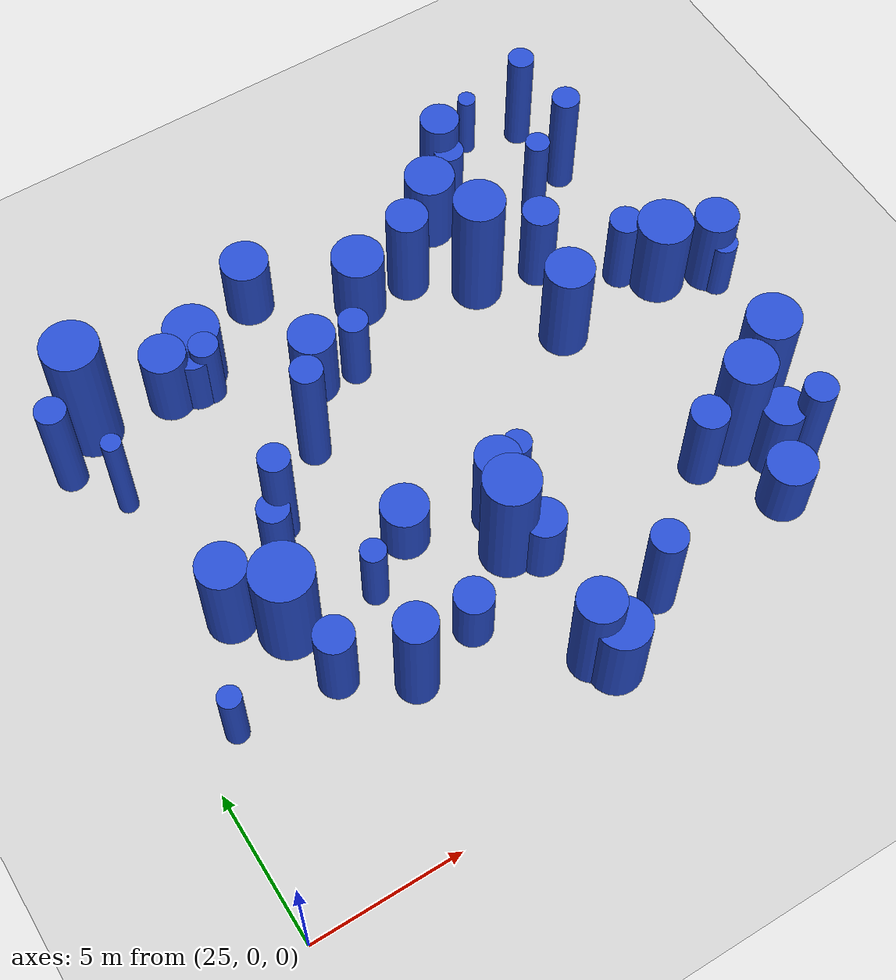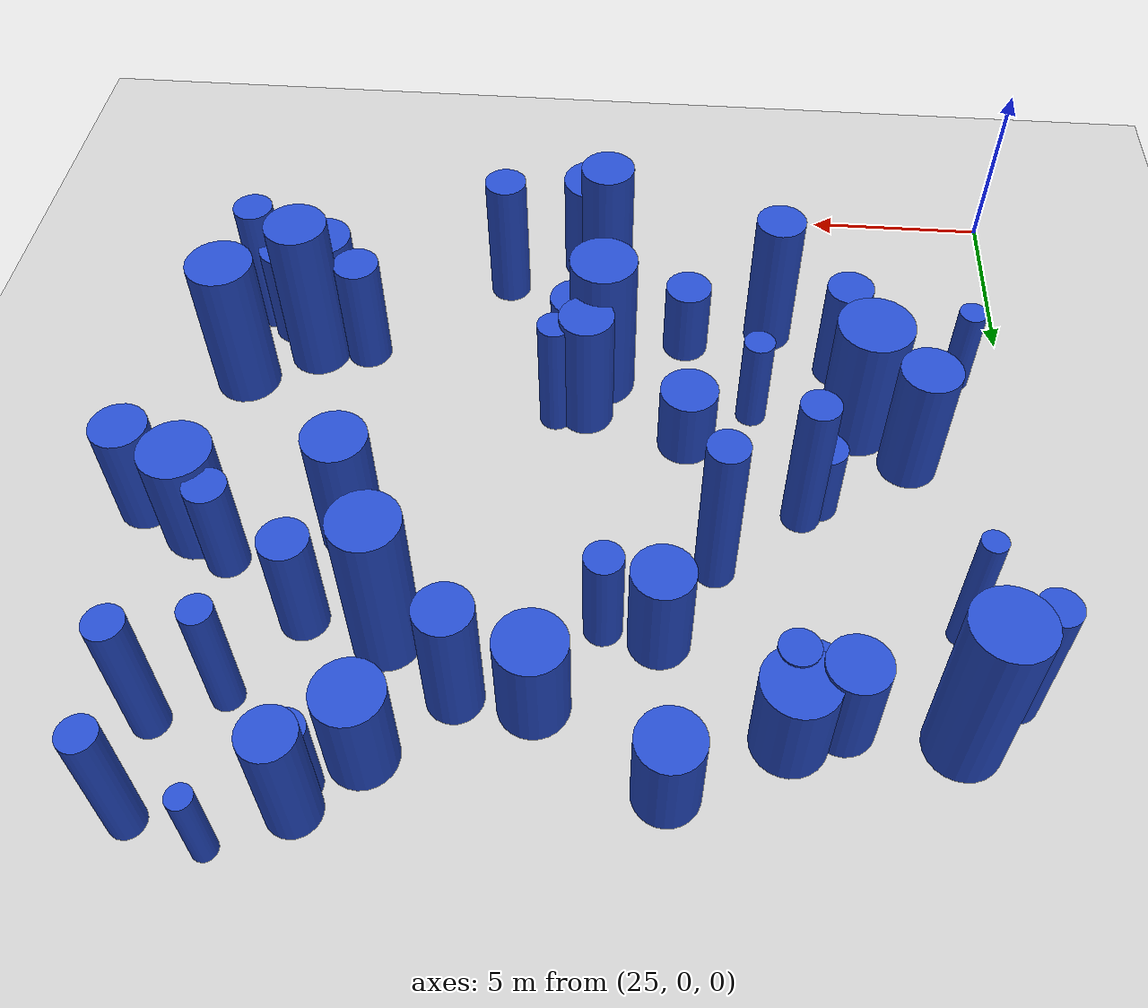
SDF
<sdf version="1.6">
 <world name="default">
  <model name="ground_plane">
   <static>1</static>
   <link name="link">
    <collision name="collision">
     <geometry><plane><normal>0 0 1</normal><size>100 100</size></plane></geometry>
     <surface><friction><ode><mu>100</mu><mu2>50</mu2></ode></friction></surface>
    </collision>
    <visual name="visual">
     <cast_shadows>0</cast_shadows>
     <geometry><plane><normal>0 0 1</normal><size>100 100</size></plane></geometry>
     <material>
      <script><uri>file://media/materials/scripts/gazebo.material</uri><name>Gazebo/Grey</name></script>
     </material>
    </visual>
   </link>
  </model>
  <model name="9">
   <static>0</static>
   <link name="link">
    <inertial>
     <mass>2</mass>
     <inertia><ixx>1.24437</ixx><ixy>0</ixy><ixz>0</ixz><iyy>1.24437</iyy><iyz>0</iyz><izz>0.137792</izz></inertia>
    </inertial>
    <collision name="collision">
     <geometry><cylinder><length>2.65572</length><radius>0.371203</radius></cylinder></geometry>
     <surface><contact><collide_without_contact>1</collide_without_contact></contact></surface>
    </collision>
    <visual name="visual">
     <geometry><cylinder><length>2.65572</length><radius>0.371203</radius></cylinder></geometry>
     <material>
      <script><uri>file://media/materials/scripts/gazebo.material</uri><name>Gazebo/Blue</name></script>
     </material>
    </visual>
    <gravity>0</gravity>
   </link>
   <pose>26.3091 6.47508 1.32786 0 -0 0</pose>
  </model>
  <model name="11">
   <static>0</static>
   <link name="link">
    <inertial>
     <mass>2</mass>
     <inertia><ixx>2.14367</ixx><ixy>0</ixy><ixz>0</ixz><iyy>2.14367</iyy><iyz>0</iyz><izz>0.840416</izz></inertia>
    </inertial>
    <collision name="collision">
     <geometry><cylinder><length>3.2157</length><radius>0.916742</radius></cylinder></geometry>
     <surface><contact><collide_without_contact>1</collide_without_contact></contact></surface>
    </collision>
    <visual name="visual">
     <geometry><cylinder><length>3.2157</length><radius>0.916742</radius></cylinder></geometry>
     <material>
      <script><uri>file://media/materials/scripts/gazebo.material</uri><name>Gazebo/Blue</name></script>
     </material>
    </visual>
    <gravity>0</gravity>
   </link>
   <pose>45.9924 13.2995 1.60785 0 -0 0</pose>
  </model>
  <model name="18">
   <static>0</static>
   <link name="link">
    <inertial>
     <mass>2</mass>
     <inertia><ixx>1.59009</ixx><ixy>0</ixy><ixz>0</ixz><iyy>1.59009</iyy><iyz>0</iyz><izz>0.231054</izz></inertia>
    </inertial>
    <collision name="collision">
     <geometry><cylinder><length>2.97446</length><radius>0.48068</radius></cylinder></geometry>
     <surface><contact><collide_without_contact>1</collide_without_contact></contact></surface>
    </collision>
    <visual name="visual">
     <geometry><cylinder><length>2.97446</length><radius>0.48068</radius></cylinder></geometry>
     <material>
      <script><uri>file://media/materials/scripts/gazebo.material</uri><name>Gazebo/Blue</name></script>
     </material>
    </visual>
    <gravity>0</gravity>
   </link>
   <pose>35.5825 15.4394 1.48723 0 -0 0</pose>
  </model>
  <model name="30">
   <static>0</static>
   <link name="link">
    <inertial>
     <mass>2</mass>
     <inertia><ixx>3.98428</ixx><ixy>0</ixy><ixz>0</ixz><iyy>3.98428</iyy><iyz>0</iyz><izz>0.265355</izz></inertia>
    </inertial>
    <collision name="collision">
     <geometry><cylinder><length>4.80724</length><radius>0.515126</radius></cylinder></geometry>
     <surface><contact><collide_without_contact>1</collide_without_contact></contact></surface>
    </collision>
    <visual name="visual">
     <geometry><cylinder><length>4.80724</length><radius>0.515126</radius></cylinder></geometry>
     <material>
      <script><uri>file://media/materials/scripts/gazebo.material</uri><name>Gazebo/Blue</name></script>
     </material>
    </visual>
    <gravity>0</gravity>
   </link>
   <pose>32.9406 13.5218 2.40362 0 -0 0</pose>
  </model>
  <model name="32">
   <static>0</static>
   <link name="link">
    <inertial>
     <mass>2</mass>
     <inertia><ixx>2.61108</ixx><ixy>0</ixy><ixz>0</ixz><iyy>2.61108</iyy><iyz>0</iyz><izz>0.521676</izz></inertia>
    </inertial>
    <collision name="collision">
     <geometry><cylinder><length>3.75519</length><radius>0.722271</radius></cylinder></geometry>
     <surface><contact><collide_without_contact>1</collide_without_contact></contact></surface>
    </collision>
    <visual name="visual">
     <geometry><cylinder><length>3.75519</length><radius>0.722271</radius></cylinder></geometry>
     <material>
      <script><uri>file://media/materials/scripts/gazebo.material</uri><name>Gazebo/Blue</name></script>
     </material>
    </visual>
    <gravity>0</gravity>
   </link>
   <pose>36.5241 8.5571 1.87759 0 -0 0</pose>
  </model>
  <model name="33">
   <static>0</static>
   <link name="link">
    <inertial>
     <mass>2</mass>
     <inertia><ixx>2.72224</ixx><ixy>0</ixy><ixz>0</ixz><iyy>2.72224</iyy><iyz>0</iyz><izz>0.654472</izz></inertia>
    </inertial>
    <collision name="collision">
     <geometry><cylinder><length>3.79078</length><radius>0.808995</radius></cylinder></geometry>
     <surface><contact><collide_without_contact>1</collide_without_contact></contact></surface>
    </collision>
    <visual name="visual">
     <geometry><cylinder><length>3.79078</length><radius>0.808995</radius></cylinder></geometry>
     <material>
      <script><uri>file://media/materials/scripts/gazebo.material</uri><name>Gazebo/Blue</name></script>
     </material>
    </visual>
    <gravity>0</gravity>
   </link>
   <pose>42.0996 13.0769 1.89539 0 -0 0</pose>
  </model>
  <model name="37">
   <static>0</static>
   <link name="link">
    <inertial>
     <mass>2</mass>
     <inertia><ixx>3.11102</ixx><ixy>0</ixy><ixz>0</ixz><iyy>3.11102</iyy><iyz>0</iyz><izz>0.974531</izz></inertia>
    </inertial>
    <collision name="collision">
     <geometry><cylinder><length>3.96769</length><radius>0.987183</radius></cylinder></geometry>
     <surface><contact><collide_without_contact>1</collide_without_contact></contact></surface>
    </collision>
    <visual name="visual">
     <geometry><cylinder><length>3.96769</length><radius>0.987183</radius></cylinder></geometry>
     <material>
      <script><uri>file://media/materials/scripts/gazebo.material</uri><name>Gazebo/Blue</name></script>
     </material>
    </visual>
    <gravity>0</gravity>
   </link>
   <pose>29.2156 8.50585 1.98384 0 -0 0</pose>
  </model>
  <model name="38">
   <static>0</static>
   <link name="link">
    <inertial>
     <mass>2</mass>
     <inertia><ixx>1.65718</ixx><ixy>0</ixy><ixz>0</ixz><iyy>1.65718</iyy><iyz>0</iyz><izz>0.295859</izz></inertia>
    </inertial>
    <collision name="collision">
     <geometry><cylinder><length>3.00924</length><radius>0.543929</radius></cylinder></geometry>
     <surface><contact><collide_without_contact>1</collide_without_contact></contact></surface>
    </collision>
    <visual name="visual">
     <geometry><cylinder><length>3.00924</length><radius>0.543929</radius></cylinder></geometry>
     <material>
      <script><uri>file://media/materials/scripts/gazebo.material</uri><name>Gazebo/Blue</name></script>
     </material>
    </visual>
    <gravity>0</gravity>
   </link>
   <pose>45.0656 14.1562 1.50462 0 -0 0</pose>
  </model>
  <model name="42">
   <static>0</static>
   <link name="link">
    <inertial>
     <mass>2</mass>
     <inertia><ixx>2.29017</ixx><ixy>0</ixy><ixz>0</ixz><iyy>2.29017</iyy><iyz>0</iyz><izz>0.162084</izz></inertia>
    </inertial>
    <collision name="collision">
     <geometry><cylinder><length>3.64071</length><radius>0.402597</radius></cylinder></geometry>
     <surface><contact><collide_without_contact>1</collide_without_contact></contact></surface>
    </collision>
    <visual name="visual">
     <geometry><cylinder><length>3.64071</length><radius>0.402597</radius></cylinder></geometry>
     <material>
      <script><uri>file://media/materials/scripts/gazebo.material</uri><name>Gazebo/Blue</name></script>
     </material>
    </visual>
    <gravity>0</gravity>
   </link>
   <pose>44.08 17.9301 1.82036 0 -0 0</pose>
  </model>
  <model name="44">
   <static>0</static>
   <link name="link">
    <inertial>
     <mass>2</mass>
     <inertia><ixx>1.0311</ixx><ixy>0</ixy><ixz>0</ixz><iyy>1.0311</iyy><iyz>0</iyz><izz>0.585255</izz></inertia>
    </inertial>
    <collision name="collision">
     <geometry><cylinder><length>2.10495</length><radius>0.765019</radius></cylinder></geometry>
     <surface><contact><collide_without_contact>1</collide_without_contact></contact></surface>
    </collision>
    <visual name="visual">
     <geometry><cylinder><length>2.10495</length><radius>0.765019</radius></cylinder></geometry>
     <material>
      <script><uri>file://media/materials/scripts/gazebo.material</uri><name>Gazebo/Blue</name></script>
     </material>
    </visual>
    <gravity>0</gravity>
   </link>
   <pose>33.7804 9.37787 1.05247 0 -0 0</pose>
  </model>
  <model name="47">
   <static>0</static>
   <link name="link">
    <inertial>
     <mass>2</mass>
     <inertia><ixx>1.72032</ixx><ixy>0</ixy><ixz>0</ixz><iyy>1.72032</iyy><iyz>0</iyz><izz>0.58604</izz></inertia>
    </inertial>
    <collision name="collision">
     <geometry><cylinder><length>2.92639</length><radius>0.765532</radius></cylinder></geometry>
     <surface><contact><collide_without_contact>1</collide_without_contact></contact></surface>
    </collision>
    <visual name="visual">
     <geometry><cylinder><length>2.92639</length><radius>0.765532</radius></cylinder></geometry>
     <material>
      <script><uri>file://media/materials/scripts/gazebo.material</uri><name>Gazebo/Blue</name></script>
     </material>
    </visual>
    <gravity>0</gravity>
   </link>
   <pose>34.2231 15.6872 1.4632 0 -0 0</pose>
  </model>
  <model name="54">
   <static>0</static>
   <link name="link">
    <inertial>
     <mass>2</mass>
     <inertia><ixx>2.6423</ixx><ixy>0</ixy><ixz>0</ixz><iyy>2.6423</iyy><iyz>0</iyz><izz>0.192654</izz></inertia>
    </inertial>
    <collision name="collision">
     <geometry><cylinder><length>3.90843</length><radius>0.438924</radius></cylinder></geometry>
     <surface><contact><collide_without_contact>1</collide_without_contact></contact></surface>
    </collision>
    <visual name="visual">
     <geometry><cylinder><length>3.90843</length><radius>0.438924</radius></cylinder></geometry>
     <material>
      <script><uri>file://media/materials/scripts/gazebo.material</uri><name>Gazebo/Blue</name></script>
     </material>
    </visual>
    <gravity>0</gravity>
   </link>
   <pose>45.4673 21.0827 1.95421 0 -0 0</pose>
  </model>
  <model name="77">
   <static>0</static>
   <link name="link">
    <inertial>
     <mass>2</mass>
     <inertia><ixx>4.20593</ixx><ixy>0</ixy><ixz>0</ixz><iyy>4.20593</iyy><iyz>0</iyz><izz>0.68476</izz></inertia>
    </inertial>
    <collision name="collision">
     <geometry><cylinder><length>4.81469</length><radius>0.827502</radius></cylinder></geometry>
     <surface><contact><collide_without_contact>1</collide_without_contact></contact></surface>
    </collision>
    <visual name="visual">
     <geometry><cylinder><length>4.81469</length><radius>0.827502</radius></cylinder></geometry>
     <material>
      <script><uri>file://media/materials/scripts/gazebo.material</uri><name>Gazebo/Blue</name></script>
     </material>
    </visual>
    <gravity>0</gravity>
   </link>
   <pose>44.2937 6.83643 2.40735 0 -0 0</pose>
  </model>
  <model name="80">
   <static>0</static>
   <link name="link">
    <inertial>
     <mass>2</mass>
     <inertia><ixx>2.22187</ixx><ixy>0</ixy><ixz>0</ixz><iyy>2.22187</iyy><iyz>0</iyz><izz>0.198127</izz></inertia>
    </inertial>
    <collision name="collision">
     <geometry><cylinder><length>3.56887</length><radius>0.445114</radius></cylinder></geometry>
     <surface><contact><collide_without_contact>1</collide_without_contact></contact></surface>
    </collision>
    <visual name="visual">
     <geometry><cylinder><length>3.56887</length><radius>0.445114</radius></cylinder></geometry>
     <material>
      <script><uri>file://media/materials/scripts/gazebo.material</uri><name>Gazebo/Blue</name></script>
     </material>
    </visual>
    <gravity>0</gravity>
   </link>
   <pose>37.3422 8.74565 1.78444 0 -0 0</pose>
  </model>
  <model name="87">
   <static>0</static>
   <link name="link">
    <inertial>
     <mass>2</mass>
     <inertia><ixx>1.36787</ixx><ixy>0</ixy><ixz>0</ixz><iyy>1.36787</iyy><iyz>0</iyz><izz>0.633021</izz></inertia>
    </inertial>
    <collision name="collision">
     <geometry><cylinder><length>2.51161</length><radius>0.795626</radius></cylinder></geometry>
     <surface><contact><collide_without_contact>1</collide_without_contact></contact></surface>
    </collision>
    <visual name="visual">
     <geometry><cylinder><length>2.51161</length><radius>0.795626</radius></cylinder></geometry>
     <material>
      <script><uri>file://media/materials/scripts/gazebo.material</uri><name>Gazebo/Blue</name></script>
     </material>
    </visual>
    <gravity>0</gravity>
   </link>
   <pose>33.9007 19.5526 1.2558 0 -0 0</pose>
  </model>
  <model name="91">
   <static>0</static>
   <link name="link">
    <inertial>
     <mass>2</mass>
     <inertia><ixx>2.57035</ixx><ixy>0</ixy><ixz>0</ixz><iyy>2.57035</iyy><iyz>0</iyz><izz>0.611671</izz></inertia>
    </inertial>
    <collision name="collision">
     <geometry><cylinder><length>3.68607</length><radius>0.782094</radius></cylinder></geometry>
     <surface><contact><collide_without_contact>1</collide_without_contact></contact></surface>
    </collision>
    <visual name="visual">
     <geometry><cylinder><length>3.68607</length><radius>0.782094</radius></cylinder></geometry>
     <material>
      <script><uri>file://media/materials/scripts/gazebo.material</uri><name>Gazebo/Blue</name></script>
     </material>
    </visual>
    <gravity>0</gravity>
   </link>
   <pose>27.8914 9.70745 1.84303 0 -0 0</pose>
  </model>
  <model name="94">
   <static>0</static>
   <link name="link">
    <inertial>
     <mass>2</mass>
     <inertia><ixx>3.56019</ixx><ixy>0</ixy><ixz>0</ixz><iyy>3.56019</iyy><iyz>0</iyz><izz>0.770451</izz></inertia>
    </inertial>
    <collision name="collision">
     <geometry><cylinder><length>4.36461</length><radius>0.877753</radius></cylinder></geometry>
     <surface><contact><collide_without_contact>1</collide_without_contact></contact></surface>
    </collision>
    <visual name="visual">
     <geometry><cylinder><length>4.36461</length><radius>0.877753</radius></cylinder></geometry>
     <material>
      <script><uri>file://media/materials/scripts/gazebo.material</uri><name>Gazebo/Blue</name></script>
     </material>
    </visual>
    <gravity>0</gravity>
   </link>
   <pose>46.1019 7.98525 2.1823 0 -0 0</pose>
  </model>
  <model name="98">
   <static>0</static>
   <link name="link">
    <inertial>
     <mass>2</mass>
     <inertia><ixx>1.69174</ixx><ixy>0</ixy><ixz>0</ixz><iyy>1.69174</iyy><iyz>0</iyz><izz>0.702063</izz></inertia>
    </inertial>
    <collision name="collision">
     <geometry><cylinder><length>2.83624</length><radius>0.837892</radius></cylinder></geometry>
     <surface><contact><collide_without_contact>1</collide_without_contact></contact></surface>
    </collision>
    <visual name="visual">
     <geometry><cylinder><length>2.83624</length><radius>0.837892</radius></cylinder></geometry>
     <material>
      <script><uri>file://media/materials/scripts/gazebo.material</uri><name>Gazebo/Blue</name></script>
     </material>
    </visual>
    <gravity>0</gravity>
   </link>
   <pose>40.6755 19.1682 1.41812 0 -0 0</pose>
  </model>
  <model name="99">
   <static>0</static>
   <link name="link">
    <inertial>
     <mass>2</mass>
     <inertia><ixx>2.23323</ixx><ixy>0</ixy><ixz>0</ixz><iyy>2.23323</iyy><iyz>0</iyz><izz>0.429787</izz></inertia>
    </inertial>
    <collision name="collision">
     <geometry><cylinder><length>3.47994</length><radius>0.655581</radius></cylinder></geometry>
     <surface><contact><collide_without_contact>1</collide_without_contact></contact></surface>
    </collision>
    <visual name="visual">
     <geometry><cylinder><length>3.47994</length><radius>0.655581</radius></cylinder></geometry>
     <material>
      <script><uri>file://media/materials/scripts/gazebo.material</uri><name>Gazebo/Blue</name></script>
     </material>
    </visual>
    <gravity>0</gravity>
   </link>
   <pose>41.9296 20.5668 1.73997 0 -0 0</pose>
  </model>
  <model name="103">
   <static>0</static>
   <link name="link">
    <inertial>
     <mass>2</mass>
     <inertia><ixx>3.11126</ixx><ixy>0</ixy><ixz>0</ixz><iyy>3.11126</iyy><iyz>0</iyz><izz>0.560773</izz></inertia>
    </inertial>
    <collision name="collision">
     <geometry><cylinder><length>4.12131</length><radius>0.748848</radius></cylinder></geometry>
     <surface><contact><collide_without_contact>1</collide_without_contact></contact></surface>
    </collision>
    <visual name="visual">
     <geometry><cylinder><length>4.12131</length><radius>0.748848</radius></cylinder></geometry>
     <material>
      <script><uri>file://media/materials/scripts/gazebo.material</uri><name>Gazebo/Blue</name></script>
     </material>
    </visual>
    <gravity>0</gravity>
   </link>
   <pose>36.3629 2.95543 2.06066 0 -0 0</pose>
  </model>
  <model name="107">
   <static>0</static>
   <link name="link">
    <inertial>
     <mass>2</mass>
     <inertia><ixx>1.20918</ixx><ixy>0</ixy><ixz>0</ixz><iyy>1.20918</iyy><iyz>0</iyz><izz>0.251671</izz></inertia>
    </inertial>
    <collision name="collision">
     <geometry><cylinder><length>2.54953</length><radius>0.501669</radius></cylinder></geometry>
     <surface><contact><collide_without_contact>1</collide_without_contact></contact></surface>
    </collision>
    <visual name="visual">
     <geometry><cylinder><length>2.54953</length><radius>0.501669</radius></cylinder></geometry>
     <material>
      <script><uri>file://media/materials/scripts/gazebo.material</uri><name>Gazebo/Blue</name></script>
     </material>
    </visual>
    <gravity>0</gravity>
   </link>
   <pose>41.91 19.9583 1.27476 0 -0 0</pose>
  </model>
  <model name="115">
   <static>0</static>
   <link name="link">
    <inertial>
     <mass>2</mass>
     <inertia><ixx>2.94351</ixx><ixy>0</ixy><ixz>0</ixz><iyy>2.94351</iyy><iyz>0</iyz><izz>0.215912</izz></inertia>
    </inertial>
    <collision name="collision">
     <geometry><cylinder><length>4.12472</length><radius>0.464664</radius></cylinder></geometry>
     <surface><contact><collide_without_contact>1</collide_without_contact></contact></surface>
    </collision>
    <visual name="visual">
     <geometry><cylinder><length>4.12472</length><radius>0.464664</radius></cylinder></geometry>
     <material>
      <script><uri>file://media/materials/scripts/gazebo.material</uri><name>Gazebo/Blue</name></script>
     </material>
    </visual>
    <gravity>0</gravity>
   </link>
   <pose>45.6699 18.6938 2.06236 0 -0 0</pose>
  </model>
  <model name="125">
   <static>0</static>
   <link name="link">
    <inertial>
     <mass>2</mass>
     <inertia><ixx>1.96404</ixx><ixy>0</ixy><ixz>0</ixz><iyy>1.96404</iyy><iyz>0</iyz><izz>0.521993</izz></inertia>
    </inertial>
    <collision name="collision">
     <geometry><cylinder><length>3.1966</length><radius>0.72249</radius></cylinder></geometry>
     <surface><contact><collide_without_contact>1</collide_without_contact></contact></surface>
    </collision>
    <visual name="visual">
     <geometry><cylinder><length>3.1966</length><radius>0.72249</radius></cylinder></geometry>
     <material>
      <script><uri>file://media/materials/scripts/gazebo.material</uri><name>Gazebo/Blue</name></script>
     </material>
    </visual>
    <gravity>0</gravity>
   </link>
   <pose>47.569 12.6602 1.5983 0 -0 0</pose>
  </model>
  <model name="127">
   <static>0</static>
   <link name="link">
    <inertial>
     <mass>2</mass>
     <inertia><ixx>1.55117</ixx><ixy>0</ixy><ixz>0</ixz><iyy>1.55117</iyy><iyz>0</iyz><izz>0.567486</izz></inertia>
    </inertial>
    <collision name="collision">
     <geometry><cylinder><length>2.75763</length><radius>0.753316</radius></cylinder></geometry>
     <surface><contact><collide_without_contact>1</collide_without_contact></contact></surface>
    </collision>
    <visual name="visual">
     <geometry><cylinder><length>2.75763</length><radius>0.753316</radius></cylinder></geometry>
     <material>
      <script><uri>file://media/materials/scripts/gazebo.material</uri><name>Gazebo/Blue</name></script>
     </material>
    </visual>
    <gravity>0</gravity>
   </link>
   <pose>29.9704 17.6052 1.37882 0 -0 0</pose>
  </model>
  <model name="128">
   <static>0</static>
   <link name="link">
    <inertial>
     <mass>2</mass>
     <inertia><ixx>4.1382</ixx><ixy>0</ixy><ixz>0</ixz><iyy>4.1382</iyy><iyz>0</iyz><izz>0.713657</izz></inertia>
    </inertial>
    <collision name="collision">
     <geometry><cylinder><length>4.76322</length><radius>0.844782</radius></cylinder></geometry>
     <surface><contact><collide_without_contact>1</collide_without_contact></contact></surface>
    </collision>
    <visual name="visual">
     <geometry><cylinder><length>4.76322</length><radius>0.844782</radius></cylinder></geometry>
     <material>
      <script><uri>file://media/materials/scripts/gazebo.material</uri><name>Gazebo/Blue</name></script>
     </material>
    </visual>
    <gravity>0</gravity>
   </link>
   <pose>40.6759 16.1664 2.38161 0 -0 0</pose>
  </model>
  <model name="129">
   <static>0</static>
   <link name="link">
    <inertial>
     <mass>2</mass>
     <inertia><ixx>2.89468</ixx><ixy>0</ixy><ixz>0</ixz><iyy>2.89468</iyy><iyz>0</iyz><izz>0.2873</izz></inertia>
    </inertial>
    <collision name="collision">
     <geometry><cylinder><length>4.06278</length><radius>0.536004</radius></cylinder></geometry>
     <surface><contact><collide_without_contact>1</collide_without_contact></contact></surface>
    </collision>
    <visual name="visual">
     <geometry><cylinder><length>4.06278</length><radius>0.536004</radius></cylinder></geometry>
     <material>
      <script><uri>file://media/materials/scripts/gazebo.material</uri><name>Gazebo/Blue</name></script>
     </material>
    </visual>
    <gravity>0</gravity>
   </link>
   <pose>45.922 5.34029 2.03139 0 -0 0</pose>
  </model>
  <model name="132">
   <static>0</static>
   <link name="link">
    <inertial>
     <mass>2</mass>
     <inertia><ixx>1.3418</ixx><ixy>0</ixy><ixz>0</ixz><iyy>1.3418</iyy><iyz>0</iyz><izz>0.237308</izz></inertia>
    </inertial>
    <collision name="collision">
     <geometry><cylinder><length>2.70904</length><radius>0.487143</radius></cylinder></geometry>
     <surface><contact><collide_without_contact>1</collide_without_contact></contact></surface>
    </collision>
    <visual name="visual">
     <geometry><cylinder><length>2.70904</length><radius>0.487143</radius></cylinder></geometry>
     <material>
      <script><uri>file://media/materials/scripts/gazebo.material</uri><name>Gazebo/Blue</name></script>
     </material>
    </visual>
    <gravity>0</gravity>
   </link>
   <pose>31.2198 17.2572 1.35452 0 -0 0</pose>
  </model>
  <model name="138">
   <static>0</static>
   <link name="link">
    <inertial>
     <mass>2</mass>
     <inertia><ixx>3.24388</ixx><ixy>0</ixy><ixz>0</ixz><iyy>3.24388</iyy><iyz>0</iyz><izz>0.443117</izz></inertia>
    </inertial>
    <collision name="collision">
     <geometry><cylinder><length>4.2584</length><radius>0.66567</radius></cylinder></geometry>
     <surface><contact><collide_without_contact>1</collide_without_contact></contact></surface>
    </collision>
    <visual name="visual">
     <geometry><cylinder><length>4.2584</length><radius>0.66567</radius></cylinder></geometry>
     <material>
      <script><uri>file://media/materials/scripts/gazebo.material</uri><name>Gazebo/Blue</name></script>
     </material>
    </visual>
    <gravity>0</gravity>
   </link>
   <pose>31.5591 5.0381 2.1292 0 -0 0</pose>
  </model>
  <model name="140">
   <static>0</static>
   <link name="link">
    <inertial>
     <mass>2</mass>
     <inertia><ixx>2.45127</ixx><ixy>0</ixy><ixz>0</ixz><iyy>2.45127</iyy><iyz>0</iyz><izz>0.102698</izz></inertia>
    </inertial>
    <collision name="collision">
     <geometry><cylinder><length>3.79467</length><radius>0.320465</radius></cylinder></geometry>
     <surface><contact><collide_without_contact>1</collide_without_contact></contact></surface>
    </collision>
    <visual name="visual">
     <geometry><cylinder><length>3.79467</length><radius>0.320465</radius></cylinder></geometry>
     <material>
      <script><uri>file://media/materials/scripts/gazebo.material</uri><name>Gazebo/Blue</name></script>
     </material>
    </visual>
    <gravity>0</gravity>
   </link>
   <pose>27.0424 14.9216 1.89733 0 -0 0</pose>
  </model>
  <model name="147">
   <static>0</static>
   <link name="link">
    <inertial>
     <mass>2</mass>
     <inertia><ixx>1.06845</ixx><ixy>0</ixy><ixz>0</ixz><iyy>1.06845</iyy><iyz>0</iyz><izz>0.394035</izz></inertia>
    </inertial>
    <collision name="collision">
     <geometry><cylinder><length>2.28661</length><radius>0.627722</radius></cylinder></geometry>
     <surface><contact><collide_without_contact>1</collide_without_contact></contact></surface>
    </collision>
    <visual name="visual">
     <geometry><cylinder><length>2.28661</length><radius>0.627722</radius></cylinder></geometry>
     <material>
      <script><uri>file://media/materials/scripts/gazebo.material</uri><name>Gazebo/Blue</name></script>
     </material>
    </visual>
    <gravity>0</gravity>
   </link>
   <pose>33.913 5.68334 1.14331 0 -0 0</pose>
  </model>
  <model name="150">
   <static>0</static>
   <link name="link">
    <inertial>
     <mass>2</mass>
     <inertia><ixx>1.91719</ixx><ixy>0</ixy><ixz>0</ixz><iyy>1.91719</iyy><iyz>0</iyz><izz>0.391821</izz></inertia>
    </inertial>
    <collision name="collision">
     <geometry><cylinder><length>3.21367</length><radius>0.625956</radius></cylinder></geometry>
     <surface><contact><collide_without_contact>1</collide_without_contact></contact></surface>
    </collision>
    <visual name="visual">
     <geometry><cylinder><length>3.21367</length><radius>0.625956</radius></cylinder></geometry>
     <material>
      <script><uri>file://media/materials/scripts/gazebo.material</uri><name>Gazebo/Blue</name></script>
     </material>
    </visual>
    <gravity>0</gravity>
   </link>
   <pose>29.6382 6.36023 1.60684 0 -0 0</pose>
  </model>
  <model name="165">
   <static>0</static>
   <link name="link">
    <inertial>
     <mass>2</mass>
     <inertia><ixx>1.02036</ixx><ixy>0</ixy><ixz>0</ixz><iyy>1.02036</iyy><iyz>0</iyz><izz>0.276299</izz></inertia>
    </inertial>
    <collision name="collision">
     <geometry><cylinder><length>2.30071</length><radius>0.525641</radius></cylinder></geometry>
     <surface><contact><collide_without_contact>1</collide_without_contact></contact></surface>
    </collision>
    <visual name="visual">
     <geometry><cylinder><length>2.30071</length><radius>0.525641</radius></cylinder></geometry>
     <material>
      <script><uri>file://media/materials/scripts/gazebo.material</uri><name>Gazebo/Blue</name></script>
     </material>
    </visual>
    <gravity>0</gravity>
   </link>
   <pose>30.3334 11.2573 1.15035 0 -0 0</pose>
  </model>
  <model name="166">
   <static>0</static>
   <link name="link">
    <inertial>
     <mass>2</mass>
     <inertia><ixx>1.79576</ixx><ixy>0</ixy><ixz>0</ixz><iyy>1.79576</iyy><iyz>0</iyz><izz>0.498182</izz></inertia>
    </inertial>
    <collision name="collision">
     <geometry><cylinder><length>3.04632</length><radius>0.70582</radius></cylinder></geometry>
     <surface><contact><collide_without_contact>1</collide_without_contact></contact></surface>
    </collision>
    <visual name="visual">
     <geometry><cylinder><length>3.04632</length><radius>0.70582</radius></cylinder></geometry>
     <material>
      <script><uri>file://media/materials/scripts/gazebo.material</uri><name>Gazebo/Blue</name></script>
     </material>
    </visual>
    <gravity>0</gravity>
   </link>
   <pose>45.1152 5.79353 1.52316 0 -0 0</pose>
  </model>
  <model name="173">
   <static>0</static>
   <link name="link">
    <inertial>
     <mass>2</mass>
     <inertia><ixx>2.10507</ixx><ixy>0</ixy><ixz>0</ixz><iyy>2.10507</iyy><iyz>0</iyz><izz>0.747803</izz></inertia>
    </inertial>
    <collision name="collision">
     <geometry><cylinder><length>3.22289</length><radius>0.864756</radius></cylinder></geometry>
     <surface><contact><collide_without_contact>1</collide_without_contact></contact></surface>
    </collision>
    <visual name="visual">
     <geometry><cylinder><length>3.22289</length><radius>0.864756</radius></cylinder></geometry>
     <material>
      <script><uri>file://media/materials/scripts/gazebo.material</uri><name>Gazebo/Blue</name></script>
     </material>
    </visual>
    <gravity>0</gravity>
   </link>
   <pose>36.7945 2.35966 1.61145 0 -0 0</pose>
  </model>
  <model name="176">
   <static>0</static>
   <link name="link">
    <inertial>
     <mass>2</mass>
     <inertia><ixx>2.84758</ixx><ixy>0</ixy><ixz>0</ixz><iyy>2.84758</iyy><iyz>0</iyz><izz>0.250699</izz></inertia>
    </inertial>
    <collision name="collision">
     <geometry><cylinder><length>4.04146</length><radius>0.500699</radius></cylinder></geometry>
     <surface><contact><collide_without_contact>1</collide_without_contact></contact></surface>
    </collision>
    <visual name="visual">
     <geometry><cylinder><length>4.04146</length><radius>0.500699</radius></cylinder></geometry>
     <material>
      <script><uri>file://media/materials/scripts/gazebo.material</uri><name>Gazebo/Blue</name></script>
     </material>
    </visual>
    <gravity>0</gravity>
   </link>
   <pose>25.9682 16.7042 2.02073 0 -0 0</pose>
  </model>
  <model name="178">
   <static>0</static>
   <link name="link">
    <inertial>
     <mass>2</mass>
     <inertia><ixx>2.5433</ixx><ixy>0</ixy><ixz>0</ixz><iyy>2.5433</iyy><iyz>0</iyz><izz>0.479642</izz></inertia>
    </inertial>
    <collision name="collision">
     <geometry><cylinder><length>3.71764</length><radius>0.692562</radius></cylinder></geometry>
     <surface><contact><collide_without_contact>1</collide_without_contact></contact></surface>
    </collision>
    <visual name="visual">
     <geometry><cylinder><length>3.71764</length><radius>0.692562</radius></cylinder></geometry>
     <material>
      <script><uri>file://media/materials/scripts/gazebo.material</uri><name>Gazebo/Blue</name></script>
     </material>
    </visual>
    <gravity>0</gravity>
   </link>
   <pose>38.8449 17.5551 1.85882 0 -0 0</pose>
  </model>
  <model name="181">
   <static>0</static>
   <link name="link">
    <inertial>
     <mass>2</mass>
     <inertia><ixx>2.10003</ixx><ixy>0</ixy><ixz>0</ixz><iyy>2.10003</iyy><iyz>0</iyz><izz>0.378767</izz></inertia>
    </inertial>
    <collision name="collision">
     <geometry><cylinder><length>3.38583</length><radius>0.615441</radius></cylinder></geometry>
     <surface><contact><collide_without_contact>1</collide_without_contact></contact></surface>
    </collision>
    <visual name="visual">
     <geometry><cylinder><length>3.38583</length><radius>0.615441</radius></cylinder></geometry>
     <material>
      <script><uri>file://media/materials/scripts/gazebo.material</uri><name>Gazebo/Blue</name></script>
     </material>
    </visual>
    <gravity>0</gravity>
   </link>
   <pose>42.9114 6.66193 1.69292 0 -0 0</pose>
  </model>
  <model name="192">
   <static>0</static>
   <link name="link">
    <inertial>
     <mass>2</mass>
     <inertia><ixx>1.99048</ixx><ixy>0</ixy><ixz>0</ixz><iyy>1.99048</iyy><iyz>0</iyz><izz>0.368962</izz></inertia>
    </inertial>
    <collision name="collision">
     <geometry><cylinder><length>3.29181</length><radius>0.607423</radius></cylinder></geometry>
     <surface><contact><collide_without_contact>1</collide_without_contact></contact></surface>
    </collision>
    <visual name="visual">
     <geometry><cylinder><length>3.29181</length><radius>0.607423</radius></cylinder></geometry>
     <material>
      <script><uri>file://media/materials/scripts/gazebo.material</uri><name>Gazebo/Blue</name></script>
     </material>
    </visual>
    <gravity>0</gravity>
   </link>
   <pose>42.7735 15.7317 1.64591 0 -0 0</pose>
  </model>
  <model name="197">
   <static>0</static>
   <link name="link">
    <inertial>
     <mass>2</mass>
     <inertia><ixx>4.59149</ixx><ixy>0</ixy><ixz>0</ixz><iyy>4.59149</iyy><iyz>0</iyz><izz>0.850962</izz></inertia>
    </inertial>
    <collision name="collision">
     <geometry><cylinder><length>4.99961</length><radius>0.922476</radius></cylinder></geometry>
     <surface><contact><collide_without_contact>1</collide_without_contact></contact></surface>
    </collision>
    <visual name="visual">
     <geometry><cylinder><length>4.99961</length><radius>0.922476</radius></cylinder></geometry>
     <material>
      <script><uri>file://media/materials/scripts/gazebo.material</uri><name>Gazebo/Blue</name></script>
     </material>
    </visual>
    <gravity>0</gravity>
   </link>
   <pose>27.3137 17.8356 2.4998 0 -0 0</pose>
  </model>
  <model name="198">
   <static>0</static>
   <link name="link">
    <inertial>
     <mass>2</mass>
     <inertia><ixx>3.85908</ixx><ixy>0</ixy><ixz>0</ixz><iyy>3.85908</iyy><iyz>0</iyz><izz>0.789412</izz></inertia>
    </inertial>
    <collision name="collision">
     <geometry><cylinder><length>4.5592</length><radius>0.888488</radius></cylinder></geometry>
     <surface><contact><collide_without_contact>1</collide_without_contact></contact></surface>
    </collision>
    <visual name="visual">
     <geometry><cylinder><length>4.5592</length><radius>0.888488</radius></cylinder></geometry>
     <material>
      <script><uri>file://media/materials/scripts/gazebo.material</uri><name>Gazebo/Blue</name></script>
     </material>
    </visual>
    <gravity>0</gravity>
   </link>
   <pose>36.1791 7.30989 2.2796 0 -0 0</pose>
  </model>
  <model name="205">
   <static>0</static>
   <link name="link">
    <inertial>
     <mass>2</mass>
     <inertia><ixx>3.23255</ixx><ixy>0</ixy><ixz>0</ixz><iyy>3.23255</iyy><iyz>0</iyz><izz>0.253733</izz></inertia>
    </inertial>
    <collision name="collision">
     <geometry><cylinder><length>4.31673</length><radius>0.50372</radius></cylinder></geometry>
     <surface><contact><collide_without_contact>1</collide_without_contact></contact></surface>
    </collision>
    <visual name="visual">
     <geometry><cylinder><length>4.31673</length><radius>0.50372</radius></cylinder></geometry>
     <material>
      <script><uri>file://media/materials/scripts/gazebo.material</uri><name>Gazebo/Blue</name></script>
     </material>
    </visual>
    <gravity>0</gravity>
   </link>
   <pose>30.7641 11.6674 2.15836 0 -0 0</pose>
  </model>
  <model name="218">
   <static>0</static>
   <link name="link">
    <inertial>
     <mass>2</mass>
     <inertia>
      <ixx>0.989816</ixx>
      <ixy>0</ixy>
      <ixz>0</ixz>
      <iyy>0.989816</iyy>
      <iyz>0</iyz>
      <izz>0.195249</izz>
     </inertia>
    </inertial>
    <collision name="collision">
     <geometry><cylinder><length>2.31369</length><radius>0.44187</radius></cylinder></geometry>
     <surface><contact><collide_without_contact>1</collide_without_contact></contact></surface>
    </collision>
    <visual name="visual">
     <geometry><cylinder><length>2.31369</length><radius>0.44187</radius></cylinder></geometry>
     <material>
      <script><uri>file://media/materials/scripts/gazebo.material</uri><name>Gazebo/Blue</name></script>
     </material>
    </visual>
    <gravity>0</gravity>
   </link>
   <pose>47.6124 12.1268 1.15684 0 -0 0</pose>
  </model>
  <model name="221">
   <static>0</static>
   <link name="link">
    <inertial>
     <mass>2</mass>
     <inertia>
      <ixx>1.07756</ixx>
      <ixy>0</ixy>
      <ixz>0</ixz>
      <iyy>1.07756</iyy>
      <iyz>0</iyz>
      <izz>0.0927051</izz>
     </inertia>
    </inertial>
    <collision name="collision">
     <geometry><cylinder><length>2.48742</length><radius>0.304475</radius></cylinder></geometry>
     <surface><contact><collide_without_contact>1</collide_without_contact></contact></surface>
    </collision>
    <visual name="visual">
     <geometry><cylinder><length>2.48742</length><radius>0.304475</radius></cylinder></geometry>
     <material>
      <script><uri>file://media/materials/scripts/gazebo.material</uri><name>Gazebo/Blue</name></script>
     </material>
    </visual>
    <gravity>0</gravity>
   </link>
   <pose>43.6344 21.5632 1.24371 0 -0 0</pose>
  </model>
  <model name="222">
   <static>0</static>
   <link name="link">
    <inertial>
     <mass>2</mass>
     <inertia><ixx>1.59547</ixx><ixy>0</ixy><ixz>0</ixz><iyy>1.59547</iyy><iyz>0</iyz><izz>0.836819</izz></inertia>
    </inertial>
    <collision name="collision">
     <geometry><cylinder><length>2.65751</length><radius>0.914778</radius></cylinder></geometry>
     <surface><contact><collide_without_contact>1</collide_without_contact></contact></surface>
    </collision>
    <visual name="visual">
     <geometry><cylinder><length>2.65751</length><radius>0.914778</radius></cylinder></geometry>
     <material>
      <script><uri>file://media/materials/scripts/gazebo.material</uri><name>Gazebo/Blue</name></script>
     </material>
    </visual>
    <gravity>0</gravity>
   </link>
   <pose>31.2013 18.0572 1.32875 0 -0 0</pose>
  </model>
  <model name="231">
   <static>0</static>
   <link name="link">
    <inertial>
     <mass>2</mass>
     <inertia><ixx>1.43429</ixx><ixy>0</ixy><ixz>0</ixz><iyy>1.43429</iyy><iyz>0</iyz><izz>0.168095</izz></inertia>
    </inertial>
    <collision name="collision">
     <geometry><cylinder><length>2.8463</length><radius>0.409994</radius></cylinder></geometry>
     <surface><contact><collide_without_contact>1</collide_without_contact></contact></surface>
    </collision>
    <visual name="visual">
     <geometry><cylinder><length>2.8463</length><radius>0.409994</radius></cylinder></geometry>
     <material>
      <script><uri>file://media/materials/scripts/gazebo.material</uri><name>Gazebo/Blue</name></script>
     </material>
    </visual>
    <gravity>0</gravity>
   </link>
   <pose>32.032 8.22655 1.42315 0 -0 0</pose>
  </model>
  <model name="233">
   <static>0</static>
   <link name="link">
    <inertial>
     <mass>2</mass>
     <inertia><ixx>1.33975</ixx><ixy>0</ixy><ixz>0</ixz><iyy>1.33975</iyy><iyz>0</iyz><izz>0.48155</izz></inertia>
    </inertial>
    <collision name="collision">
     <geometry><cylinder><length>2.56785</length><radius>0.693938</radius></cylinder></geometry>
     <surface><contact><collide_without_contact>1</collide_without_contact></contact></surface>
    </collision>
    <visual name="visual">
     <geometry><cylinder><length>2.56785</length><radius>0.693938</radius></cylinder></geometry>
     <material>
      <script><uri>file://media/materials/scripts/gazebo.material</uri><name>Gazebo/Blue</name></script>
     </material>
    </visual>
    <gravity>0</gravity>
   </link>
   <pose>36.9745 6.62674 1.28393 0 -0 0</pose>
  </model>
  <model name="235">
   <static>0</static>
   <link name="link">
    <inertial>
     <mass>2</mass>
     <inertia><ixx>1.12888</ixx><ixy>0</ixy><ixz>0</ixz><iyy>1.12888</iyy><iyz>0</iyz><izz>0.454603</izz></inertia>
    </inertial>
    <collision name="collision">
     <geometry><cylinder><length>2.32582</length><radius>0.674242</radius></cylinder></geometry>
     <surface><contact><collide_without_contact>1</collide_without_contact></contact></surface>
    </collision>
    <visual name="visual">
     <geometry><cylinder><length>2.32582</length><radius>0.674242</radius></cylinder></geometry>
     <material>
      <script><uri>file://media/materials/scripts/gazebo.material</uri><name>Gazebo/Blue</name></script>
     </material>
    </visual>
    <gravity>0</gravity>
   </link>
   <pose>30.8583 17.4475 1.16291 0 -0 0</pose>
  </model>
  <model name="241">
   <static>0</static>
   <link name="link">
    <inertial>
     <mass>2</mass>
     <inertia><ixx>1.65659</ixx><ixy>0</ixy><ixz>0</ixz><iyy>1.65659</iyy><iyz>0</iyz><izz>0.74608</izz></inertia>
    </inertial>
    <collision name="collision">
     <geometry><cylinder><length>2.77512</length><radius>0.863759</radius></cylinder></geometry>
     <surface><contact><collide_without_contact>1</collide_without_contact></contact></surface>
    </collision>
    <visual name="visual">
     <geometry><cylinder><length>2.77512</length><radius>0.863759</radius></cylinder></geometry>
     <material>
      <script><uri>file://media/materials/scripts/gazebo.material</uri><name>Gazebo/Blue</name></script>
     </material>
    </visual>
    <gravity>0</gravity>
   </link>
   <pose>37.0131 17.6216 1.38756 0 -0 0</pose>
  </model>
  <model name="245">
   <static>0</static>
   <link name="link">
    <inertial>
     <mass>2</mass>
     <inertia><ixx>1.18907</ixx><ixy>0</ixy><ixz>0</ixz><iyy>1.18907</iyy><iyz>0</iyz><izz>0.646463</izz></inertia>
    </inertial>
    <collision name="collision">
     <geometry><cylinder><length>2.27926</length><radius>0.804029</radius></cylinder></geometry>
     <surface><contact><collide_without_contact>1</collide_without_contact></contact></surface>
    </collision>
    <visual name="visual">
     <geometry><cylinder><length>2.27926</length><radius>0.804029</radius></cylinder></geometry>
     <material>
      <script><uri>file://media/materials/scripts/gazebo.material</uri><name>Gazebo/Blue</name></script>
     </material>
    </visual>
    <gravity>0</gravity>
   </link>
   <pose>44.4751 4.3637 1.13963 0 -0 0</pose>
  </model>
  <model name="246">
   <static>0</static>
   <link name="link">
    <inertial>
     <mass>2</mass>
     <inertia><ixx>2.8322</ixx><ixy>0</ixy><ixz>0</ixz><iyy>2.8322</iyy><iyz>0</iyz><izz>0.329428</izz></inertia>
    </inertial>
    <collision name="collision">
     <geometry><cylinder><length>4.00061</length><radius>0.573958</radius></cylinder></geometry>
     <surface><contact><collide_without_contact>1</collide_without_contact></contact></surface>
    </collision>
    <visual name="visual">
     <geometry><cylinder><length>4.00061</length><radius>0.573958</radius></cylinder></geometry>
     <material>
      <script><uri>file://media/materials/scripts/gazebo.material</uri><name>Gazebo/Blue</name></script>
     </material>
    </visual>
    <gravity>0</gravity>
   </link>
   <pose>39.1846 3.64481 2.00031 0 -0 0</pose>
  </model>
 </world>
</sdf>
